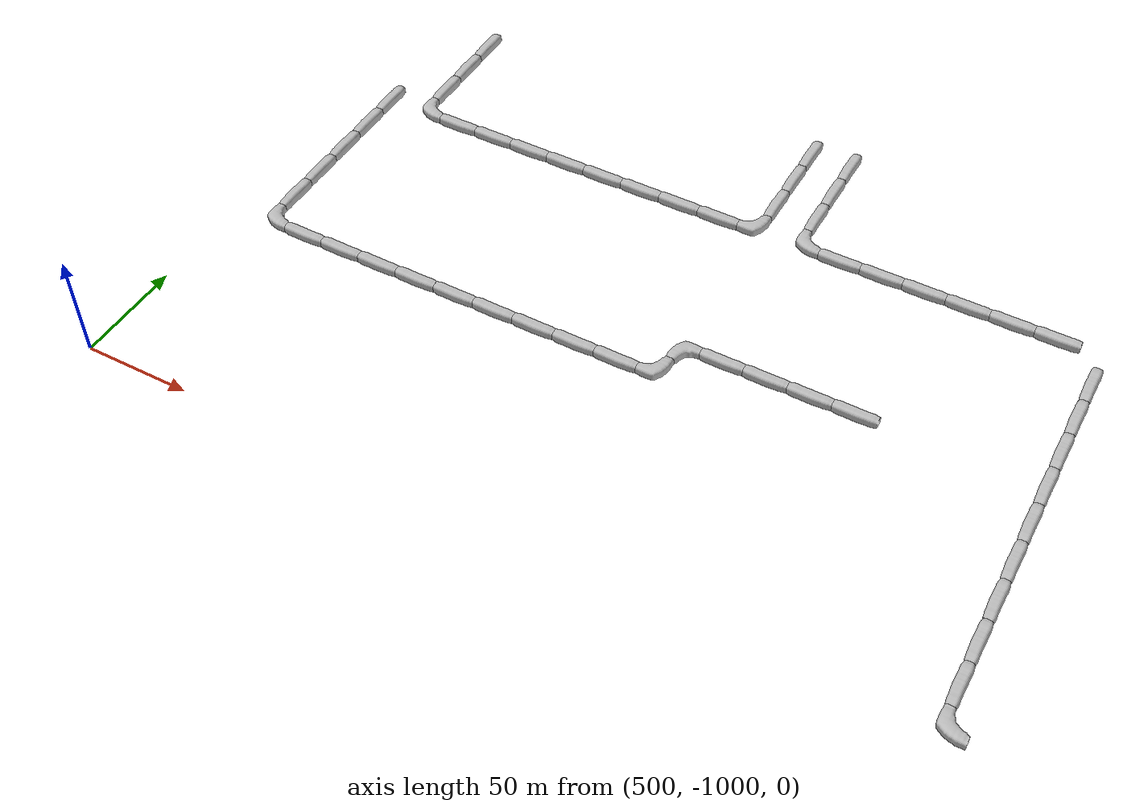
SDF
<sdf version="1.6">
 <world name="cave_32000_2">
  <include>
   <static>true</static>
   <name>cave_44_-50</name>
   <pose>880 -1000 0 0 0 0.0</pose>
   <uri>model://cave_L_20m</uri>
  </include>
  <include>
   <static>true</static>
   <name>cave_44_-49</name>
   <pose>880 -980 0 0 0 0.0</pose>
   <uri>model://cave_straight_20m</uri>
  </include>
  <include>
   <static>true</static>
   <name>cave_44_-48</name>
   <pose>880 -960 0 0 0 0.0</pose>
   <uri>model://cave_straight_20m</uri>
  </include>
  <include>
   <static>true</static>
   <name>cave_44_-47</name>
   <pose>880 -940 0 0 0 0.0</pose>
   <uri>model://cave_straight_20m</uri>
  </include>
  <include>
   <static>true</static>
   <name>cave_44_-46</name>
   <pose>880 -920 0 0 0 0.0</pose>
   <uri>model://cave_straight_20m</uri>
  </include>
  <include>
   <static>true</static>
   <name>cave_44_-45</name>
   <pose>880 -900 0 0 0 0.0</pose>
   <uri>model://cave_straight_20m</uri>
  </include>
  <include>
   <static>true</static>
   <name>cave_44_-44</name>
   <pose>880 -880 0 0 0 0.0</pose>
   <uri>model://cave_straight_20m</uri>
  </include>
  <include>
   <static>true</static>
   <name>cave_44_-43</name>
   <pose>880 -860 0 0 0 0.0</pose>
   <uri>model://cave_straight_20m</uri>
  </include>
  <include>
   <static>true</static>
   <name>cave_44_-42</name>
   <pose>880 -840 0 0 0 0.0</pose>
   <uri>model://cave_straight_20m</uri>
  </include>
  <include>
   <static>true</static>
   <name>cave_44_-41</name>
   <pose>880 -820 0 0 0 0.0</pose>
   <uri>model://cave_straight_20m</uri>
  </include>
  <include>
   <static>true</static>
   <name>cave_37_-37</name>
   <pose>740 -740 0 0 0 0.0</pose>
   <uri>model://cave_straight_20m</uri>
  </include>
  <include>
   <static>true</static>
   <name>cave_37_-38</name>
   <pose>740 -760 0 0 0 0.0</pose>
   <uri>model://cave_straight_20m</uri>
  </include>
  <include>
   <static>true</static>
   <name>cave_37_-39</name>
   <pose>740 -780 0 0 0 0.0</pose>
   <uri>model://cave_straight_20m</uri>
  </include>
  <include>
   <static>true</static>
   <name>cave_37_-40</name>
   <pose>740 -800 0 0 0 0.0</pose>
   <uri>model://cave_L_20m</uri>
  </include>
  <include>
   <static>true</static>
   <name>cave_38_-40</name>
   <pose>760 -800 0 0 0 1.5707963267948966</pose>
   <uri>model://cave_straight_20m</uri>
  </include>
  <include>
   <static>true</static>
   <name>cave_39_-40</name>
   <pose>780 -800 0 0 0 1.5707963267948966</pose>
   <uri>model://cave_straight_20m</uri>
  </include>
  <include>
   <static>true</static>
   <name>cave_40_-40</name>
   <pose>800 -800 0 0 0 1.5707963267948966</pose>
   <uri>model://cave_straight_20m</uri>
  </include>
  <include>
   <static>true</static>
   <name>cave_41_-40</name>
   <pose>820 -800 0 0 0 1.5707963267948966</pose>
   <uri>model://cave_straight_20m</uri>
  </include>
  <include>
   <static>true</static>
   <name>cave_42_-40</name>
   <pose>840 -800 0 0 0 1.5707963267948966</pose>
   <uri>model://cave_straight_20m</uri>
  </include>
  <include>
   <static>true</static>
   <name>cave_43_-40</name>
   <pose>860 -800 0 0 0 1.5707963267948966</pose>
   <uri>model://cave_straight_20m</uri>
  </include>
  <include>
   <static>true</static>
   <name>cave_36_-37</name>
   <pose>720 -740 0 0 0 0.0</pose>
   <uri>model://cave_straight_20m</uri>
  </include>
  <include>
   <static>true</static>
   <name>cave_36_-38</name>
   <pose>720 -760 0 0 0 0.0</pose>
   <uri>model://cave_straight_20m</uri>
  </include>
  <include>
   <static>true</static>
   <name>cave_36_-39</name>
   <pose>720 -780 0 0 0 0.0</pose>
   <uri>model://cave_straight_20m</uri>
  </include>
  <include>
   <static>true</static>
   <name>cave_36_-40</name>
   <pose>720 -800 0 0 0 1.5707963267948966</pose>
   <uri>model://cave_L_20m</uri>
  </include>
  <include>
   <static>true</static>
   <name>cave_35_-40</name>
   <pose>700 -800 0 0 0 1.5707963267948966</pose>
   <uri>model://cave_straight_20m</uri>
  </include>
  <include>
   <static>true</static>
   <name>cave_34_-40</name>
   <pose>680 -800 0 0 0 1.5707963267948966</pose>
   <uri>model://cave_straight_20m</uri>
  </include>
  <include>
   <static>true</static>
   <name>cave_33_-40</name>
   <pose>660 -800 0 0 0 1.5707963267948966</pose>
   <uri>model://cave_straight_20m</uri>
  </include>
  <include>
   <static>true</static>
   <name>cave_32_-40</name>
   <pose>640 -800 0 0 0 1.5707963267948966</pose>
   <uri>model://cave_straight_20m</uri>
  </include>
  <include>
   <static>true</static>
   <name>cave_31_-40</name>
   <pose>620 -800 0 0 0 1.5707963267948966</pose>
   <uri>model://cave_straight_20m</uri>
  </include>
  <include>
   <static>true</static>
   <name>cave_30_-40</name>
   <pose>600 -800 0 0 0 1.5707963267948966</pose>
   <uri>model://cave_straight_20m</uri>
  </include>
  <include>
   <static>true</static>
   <name>cave_29_-40</name>
   <pose>580 -800 0 0 0 1.5707963267948966</pose>
   <uri>model://cave_straight_20m</uri>
  </include>
  <include>
   <static>true</static>
   <name>cave_28_-40</name>
   <pose>560 -800 0 0 0 1.5707963267948966</pose>
   <uri>model://cave_straight_20m</uri>
  </include>
  <include>
   <static>true</static>
   <name>cave_27_-40</name>
   <pose>540 -800 0 0 0 0.0</pose>
   <uri>model://cave_L_20m</uri>
  </include>
  <include>
   <static>true</static>
   <name>cave_27_-39</name>
   <pose>540 -780 0 0 0 0.0</pose>
   <uri>model://cave_straight_20m</uri>
  </include>
  <include>
   <static>true</static>
   <name>cave_27_-38</name>
   <pose>540 -760 0 0 0 0.0</pose>
   <uri>model://cave_straight_20m</uri>
  </include>
  <include>
   <static>true</static>
   <name>cave_27_-37</name>
   <pose>540 -740 0 0 0 0.0</pose>
   <uri>model://cave_straight_20m</uri>
  </include>
  <include>
   <static>true</static>
   <name>cave_26_-40</name>
   <pose>520 -800 0 0 0 0.0</pose>
   <uri>model://cave_straight_20m</uri>
  </include>
  <include>
   <static>true</static>
   <name>cave_26_-41</name>
   <pose>520 -820 0 0 0 0.0</pose>
   <uri>model://cave_straight_20m</uri>
  </include>
  <include>
   <static>true</static>
   <name>cave_26_-42</name>
   <pose>520 -840 0 0 0 0.0</pose>
   <uri>model://cave_straight_20m</uri>
  </include>
  <include>
   <static>true</static>
   <name>cave_26_-43</name>
   <pose>520 -860 0 0 0 0.0</pose>
   <uri>model://cave_straight_20m</uri>
  </include>
  <include>
   <static>true</static>
   <name>cave_26_-44</name>
   <pose>520 -880 0 0 0 0.0</pose>
   <uri>model://cave_straight_20m</uri>
  </include>
  <include>
   <static>true</static>
   <name>cave_26_-45</name>
   <pose>520 -900 0 0 0 0.0</pose>
   <uri>model://cave_L_20m</uri>
  </include>
  <include>
   <static>true</static>
   <name>cave_27_-45</name>
   <pose>540 -900 0 0 0 1.5707963267948966</pose>
   <uri>model://cave_straight_20m</uri>
  </include>
  <include>
   <static>true</static>
   <name>cave_28_-45</name>
   <pose>560 -900 0 0 0 1.5707963267948966</pose>
   <uri>model://cave_straight_20m</uri>
  </include>
  <include>
   <static>true</static>
   <name>cave_29_-45</name>
   <pose>580 -900 0 0 0 1.5707963267948966</pose>
   <uri>model://cave_straight_20m</uri>
  </include>
  <include>
   <static>true</static>
   <name>cave_30_-45</name>
   <pose>600 -900 0 0 0 1.5707963267948966</pose>
   <uri>model://cave_straight_20m</uri>
  </include>
  <include>
   <static>true</static>
   <name>cave_31_-45</name>
   <pose>620 -900 0 0 0 1.5707963267948966</pose>
   <uri>model://cave_straight_20m</uri>
  </include>
  <include>
   <static>true</static>
   <name>cave_32_-45</name>
   <pose>640 -900 0 0 0 1.5707963267948966</pose>
   <uri>model://cave_straight_20m</uri>
  </include>
  <include>
   <static>true</static>
   <name>cave_33_-45</name>
   <pose>660 -900 0 0 0 1.5707963267948966</pose>
   <uri>model://cave_straight_20m</uri>
  </include>
  <include>
   <static>true</static>
   <name>cave_34_-45</name>
   <pose>680 -900 0 0 0 1.5707963267948966</pose>
   <uri>model://cave_straight_20m</uri>
  </include>
  <include>
   <static>true</static>
   <name>cave_35_-45</name>
   <pose>700 -900 0 0 0 1.5707963267948966</pose>
   <uri>model://cave_straight_20m</uri>
  </include>
  <include>
   <static>true</static>
   <name>cave_36_-45</name>
   <pose>720 -900 0 0 0 1.5707963267948966</pose>
   <uri>model://cave_L_20m</uri>
  </include>
  <include>
   <static>true</static>
   <name>cave_36_-44</name>
   <pose>720 -880 0 0 0 -1.5707963267948966</pose>
   <uri>model://cave_L_20m</uri>
  </include>
  <include>
   <static>true</static>
   <name>cave_37_-44</name>
   <pose>740 -880 0 0 0 1.5707963267948966</pose>
   <uri>model://cave_straight_20m</uri>
  </include>
  <include>
   <static>true</static>
   <name>cave_38_-44</name>
   <pose>760 -880 0 0 0 1.5707963267948966</pose>
   <uri>model://cave_straight_20m</uri>
  </include>
  <include>
   <static>true</static>
   <name>cave_39_-44</name>
   <pose>780 -880 0 0 0 1.5707963267948966</pose>
   <uri>model://cave_straight_20m</uri>
  </include>
  <include>
   <static>true</static>
   <name>cave_40_-44</name>
   <pose>800 -880 0 0 0 1.5707963267948966</pose>
   <uri>model://cave_straight_20m</uri>
  </include>
 </world>
</sdf>
